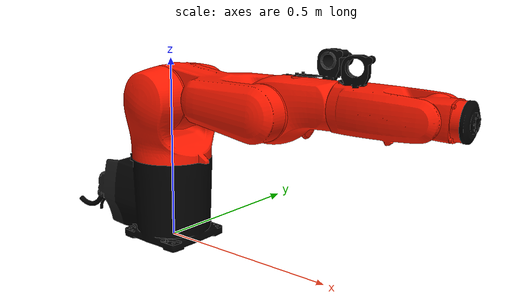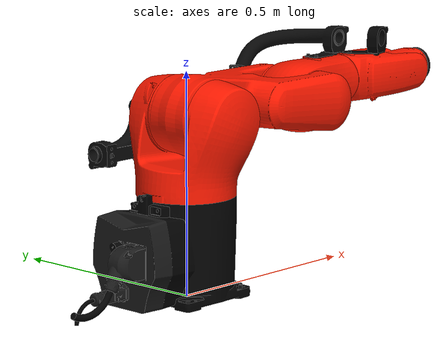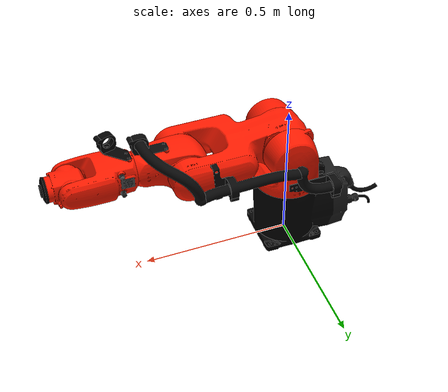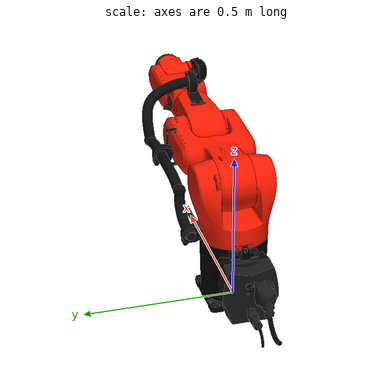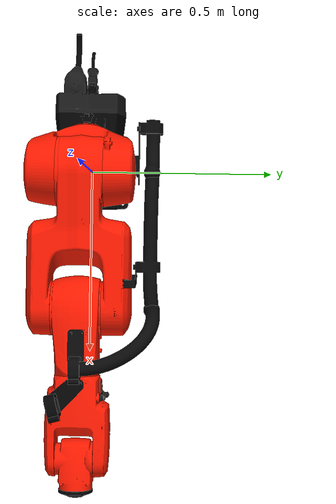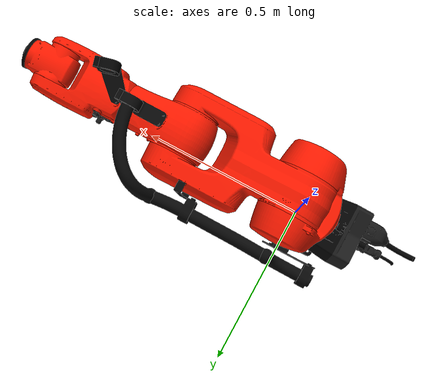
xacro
<?xml version="1.0" encoding="UTF-8"?>
<robot xmlns:xacro="http://ros.org/wiki/xacro" name="kr6_r700_2">
  <!-- Import macro files  -->
  <xacro:include filename="$(find kuka_agilus_support)/urdf/kr6_r700_2_macro.xacro"/>
  <xacro:include filename="$(find kuka_agilus_support)/urdf/kr_agilus_ros2_control_macro.xacro"/>
  <!-- Read additional arguments  -->
  <xacro:arg name="driver_version" default="rsi_only"/>
  <xacro:arg name="mode" default="hardware"/>
  <xacro:arg name="gpio_config" default=""/>
  <xacro:arg name="roundtrip_time" default="0"/>
  <xacro:arg name="client_ip" default="0.0.0.0"/>
  <xacro:arg name="client_port" default="59152"/>
  <xacro:arg name="mxa_client_port" default="1337"/>
  <xacro:arg name="controller_ip" default="0.0.0.0"/>
  <xacro:arg name="verify_robot_model" default="true"/>
  <xacro:arg name="prefix" default=""/>
  <xacro:arg name="x" default="0"/>
  <xacro:arg name="y" default="0"/>
  <xacro:arg name="z" default="0"/>
  <xacro:arg name="roll" default="0"/>
  <xacro:arg name="pitch" default="0"/>
  <xacro:arg name="yaw" default="0"/>
  <xacro:arg name="rsi_xml_config_file" default=""/>
  <xacro:kuka_agilus_ros2_control name="$(arg prefix)kr6_r700_2" driver_version="$(arg driver_version)" client_ip="$(arg client_ip)" client_port="$(arg client_port)" mxa_client_port="$(arg mxa_client_port)" controller_ip="$(arg controller_ip)" prefix="$(arg prefix)" mode="$(arg mode)" gpio_config="$(arg gpio_config)" roundtrip_time="$(arg roundtrip_time)" verify_robot_model="$(arg verify_robot_model)" rsi_xml_config_file="$(arg rsi_xml_config_file)">
    <ext_axes_ros2_control_joints/>
  </xacro:kuka_agilus_ros2_control>
  <!-- world link -->
  <link name="world"/>
  <!-- robot links, joints -->
  <xacro:kuka_kr6_r700_2_robot prefix="$(arg prefix)" package_name="kuka_agilus_support"/>
  <!-- default world - base_link joint -->
  <joint name="$(arg prefix)world-base_link" type="fixed">
    <parent link="world"/>
    <child link="$(arg prefix)base_link"/>
    <origin xyz="$(arg x) $(arg y) $(arg z)" rpy="$(arg roll) $(arg pitch) $(arg yaw)"/>
  </joint>
</robot>

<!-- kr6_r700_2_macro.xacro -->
<robot xmlns:xacro="http://www.ros.org/wiki/xacro" name="kr6_r700_2">
  <xacro:macro name="kuka_kr6_r700_2_robot" params="prefix package_name">
    <link name="${prefix}base"/>
    <link name="${prefix}base_link">
      <collision>
        <geometry>
          <mesh filename="package://${package_name}/meshes/kr6_r700_2/collision/base_link.stl"/>
        </geometry>
        <origin rpy="0.0 -0.0 0.0" xyz="0.0 0.0 0.0"/>
      </collision>
      <inertial>
        <inertia ixx="0.16209200415615" ixy="0.0" ixz="0.0" iyy="0.10881181598555635" iyz="0.0" izz="0.18461591505869543"/>
        <mass value="1.6916E1"/>
        <origin rpy="1.6165592773339865 -1.221289277333065 3.10031147437779" xyz="-0.03713348309292976 2.6602033577676952E-5 0.10863850792149446"/>
      </inertial>
      <visual>
        <geometry>
          <mesh filename="package://${package_name}/meshes/kr6_r700_2/visual/base_link.dae"/>
        </geometry>
        <origin rpy="0.0 -0.0 0.0" xyz="0.0 0.0 0.0"/>
      </visual>
    </link>
    <link name="${prefix}flange"/>
    <link name="${prefix}link_1">
      <collision>
        <geometry>
          <mesh filename="package://${package_name}/meshes/kr6_r700_2/collision/link_1.stl"/>
        </geometry>
        <origin rpy="-3.141592653589793 0.0 -0.0" xyz="0.0 -2.547265342226495e-17 0.20800000000000002"/>
      </collision>
      <inertial>
        <inertia ixx="0.07406183855390856" ixy="0.0" ixz="0.0" iyy="0.0890478351825312" iyz="0.0" izz="0.11039570662759428"/>
        <mass value="8.416E0"/>
        <origin rpy="1.304519343134156 -0.9428616016893944 -1.4226510948637578" xyz="0.00641040874524715 -0.016268053707224336 -0.1065889377376426"/>
      </inertial>
      <visual>
        <geometry>
          <mesh filename="package://${package_name}/meshes/kr6_r700_2/visual/link_1.dae"/>
        </geometry>
        <origin rpy="-3.141592653589793 0.0 -0.0" xyz="0.0 -2.547265342226495e-17 0.20800000000000002"/>
      </visual>
    </link>
    <link name="${prefix}link_2">
      <collision>
        <geometry>
          <mesh filename="package://${package_name}/meshes/kr6_r700_2/collision/link_2.stl"/>
        </geometry>
        <origin rpy="1.5707963267948968 -0.0 1.5707963267948966" xyz="-0.4 -0.024999999999999977 -0.09069999999999996"/>
      </collision>
      <inertial>
        <inertia ixx="0.2791393962851823" ixy="0.0" ixz="0.0" iyy="0.0812068241212874" iyz="0.0" izz="0.3188594096256082"/>
        <mass value="1.55659E1"/>
        <origin rpy="-1.3903732489969955 -1.5149954424356888 -0.19980852830399726" xyz="0.0968897140544395 -0.004085391785890956 -0.07157586711979391"/>
      </inertial>
      <visual>
        <geometry>
          <mesh filename="package://${package_name}/meshes/kr6_r700_2/visual/link_2.dae"/>
        </geometry>
        <origin rpy="1.5707963267948968 -0.0 1.5707963267948966" xyz="-0.4 -0.024999999999999977 -0.09069999999999996"/>
      </visual>
    </link>
    <link name="${prefix}link_3">
      <collision>
        <geometry>
          <mesh filename="package://${package_name}/meshes/kr6_r700_2/collision/link_3.stl"/>
        </geometry>
        <origin rpy="1.5707963267948968 -0.0 -0.0" xyz="-0.025000000000000022 0.7350000000000001 -0.08649999999999995"/>
      </collision>
      <inertial>
        <inertia ixx="0.016743444555446366" ixy="0.0" ixz="0.0" iyy="0.02548253701645681" iyz="0.0" izz="0.02822390996140249"/>
        <mass value="5.303E0"/>
        <origin rpy="2.358120324062734 -0.2189419917733543 -3.0042851780780877" xyz="0.022228738449934005 -0.011136149349424855 -0.06927623986422782"/>
      </inertial>
      <visual>
        <geometry>
          <mesh filename="package://${package_name}/meshes/kr6_r700_2/visual/link_3.dae"/>
        </geometry>
        <origin rpy="1.5707963267948968 -0.0 -0.0" xyz="-0.025000000000000022 0.7350000000000001 -0.08649999999999995"/>
      </visual>
    </link>
    <link name="${prefix}link_4">
      <collision>
        <geometry>
          <mesh filename="package://${package_name}/meshes/kr6_r700_2/collision/link_4.stl"/>
        </geometry>
        <origin rpy="1.8369701987210297e-16 1.5707963267948966 0.0" xyz="-0.76 3.4089087741312404e-17 0.16599999999999998"/>
      </collision>
      <inertial>
        <inertia ixx="0.01053127278723183" ixy="0.0" ixz="0.0" iyy="0.03425565311920861" iyz="0.0" izz="0.03735903294944075"/>
        <mass value="4.6129999999999995E0"/>
        <origin rpy="-2.0540104905408416 -1.5266176566842766 2.01813464445371" xyz="1.0969000650336042E-4 0.010267591588987646 -0.09163862995881207"/>
      </inertial>
      <visual>
        <geometry>
          <mesh filename="package://${package_name}/meshes/kr6_r700_2/visual/link_4.dae"/>
        </geometry>
        <origin rpy="1.8369701987210297e-16 1.5707963267948966 0.0" xyz="-0.76 3.4089087741312404e-17 0.16599999999999998"/>
      </visual>
    </link>
    <link name="${prefix}link_5">
      <collision>
        <geometry>
          <mesh filename="package://${package_name}/meshes/kr6_r700_2/collision/link_5.stl"/>
        </geometry>
        <origin rpy="1.5707963267948968 -3.749399456654644e-33 -6.123233995736766e-17" xyz="-0.38999999999999996 0.76 -0.05049999999999998"/>
      </collision>
      <inertial>
        <inertia ixx="0.0017317756133102902" ixy="0.0" ixz="0.0" iyy="0.0022195008054406813" iyz="0.0" izz="0.002467090055442976"/>
        <mass value="1.6128E0"/>
        <origin rpy="1.567898714902773 -0.8611716764868312 -3.100280255900494" xyz="0.009320696924603175 7.83482142857143E-4 -0.026462549603174602"/>
      </inertial>
      <visual>
        <geometry>
          <mesh filename="package://${package_name}/meshes/kr6_r700_2/visual/link_5.dae"/>
        </geometry>
        <origin rpy="1.5707963267948968 -3.749399456654644e-33 -6.123233995736766e-17" xyz="-0.38999999999999996 0.76 -0.05049999999999998"/>
      </visual>
    </link>
    <link name="${prefix}link_6">
      <collision>
        <geometry>
          <mesh filename="package://${package_name}/meshes/kr6_r700_2/collision/link_6.stl"/>
        </geometry>
        <origin rpy="1.2246467991473532e-16 1.5707963267948966 0.0" xyz="-0.76 -1.6051535876301016e-17 0.4514999999999999"/>
      </collision>
      <inertial>
        <inertia ixx="1.83698267603013E-4" ixy="0.0" ixz="0.0" iyy="1.8213621766783165E-4" iyz="0.0" izz="2.9589000000000004E-4"/>
        <mass value="7.34E-1"/>
        <origin rpy="0.0 -0.0 1.2234271886965395" xyz="0.0 0.0 -0.011764604904632152"/>
      </inertial>
      <visual>
        <geometry>
          <mesh filename="package://${package_name}/meshes/kr6_r700_2/visual/link_6.dae"/>
        </geometry>
        <origin rpy="1.2246467991473532e-16 1.5707963267948966 0.0" xyz="-0.76 -1.6051535876301016e-17 0.4514999999999999"/>
      </visual>
    </link>
    <link name="${prefix}tool0"/>
    <joint name="${prefix}base_link-base" type="fixed">
      <child link="${prefix}base"/>
      <parent link="${prefix}base_link"/>
    </joint>
    <joint name="${prefix}joint_1" type="revolute">
      <axis xyz="0.0 0.0 1.0"/>
      <child link="${prefix}link_1"/>
      <limit effort="1.86E2" lower="-2.967059725E0" upper="2.967059725E0" velocity="6.2831853071795862E0"/>
      <origin rpy="3.141592653589793 -0.0 0.0" xyz="0.0 0.0 0.20800000000000002"/>
      <parent link="${prefix}base_link"/>
    </joint>
    <joint name="${prefix}joint_2" type="revolute">
      <axis xyz="0.0 0.0 1.0"/>
      <child link="${prefix}link_2"/>
      <limit effort="1.6893729997505432E2" lower="-2.5" upper="0.1" velocity="5.2359877559829888E0"/>
      <origin rpy="1.5707963267948966 -0.0 0.0" xyz="0.025 -0.0907 -0.192"/>
      <parent link="${prefix}link_1"/>
    </joint>
    <joint name="${prefix}joint_3" type="revolute">
      <axis xyz="0.0 0.0 1.0"/>
      <child link="${prefix}link_3"/>
      <limit effort="8.1493186258254326E1" lower="-0.5" upper="2.5" velocity="6.2831853071795862E0"/>
      <origin rpy="0.0 -0.0 0.0" xyz="0.335 0.0 -0.004200000000000001"/>
      <parent link="${prefix}link_2"/>
    </joint>
    <joint name="${prefix}joint_4" type="revolute">
      <axis xyz="0.0 0.0 1.0"/>
      <child link="${prefix}link_4"/>
      <limit effort="4.8879867848304357E1" lower="-3.2288591125E0" upper="3.2288591125E0" velocity="7.8539816339744828E0"/>
      <origin rpy="1.5707963267948966 -0.0 -1.5707963267948966" xyz="0.14100000000000001 -0.025 -0.08650000000000001"/>
      <parent link="${prefix}link_3"/>
    </joint>
    <joint name="${prefix}joint_5" type="revolute">
      <axis xyz="0.0 0.0 1.0"/>
      <child link="${prefix}link_5"/>
      <limit effort="4.0135638235238289E1" lower="-2.0943951E0" upper="2.0943951E0" velocity="7.8539816339744828E0"/>
      <origin rpy="0.0 1.5707963267948966 1.5707963267948966" xyz="0.0 0.0505 -0.224"/>
      <parent link="${prefix}link_4"/>
    </joint>
    <joint name="${prefix}joint_6" type="revolute">
      <axis xyz="0.0 0.0 1.0"/>
      <child link="${prefix}link_6"/>
      <limit effort="2.7358196129032258E1" lower="-6.108652375E0" upper="6.108652375E0" velocity="9.42477796076938E0"/>
      <origin rpy="1.5707963267948966 -0.0 -1.5707963267948966" xyz="0.0615 0.0 -0.0505"/>
      <parent link="${prefix}link_5"/>
    </joint>
    <joint name="${prefix}link6-flange" type="fixed">
      <child link="${prefix}flange"/>
      <origin rpy="0.0 1.5707963267948966 0.0" xyz="0.0 0.0 -0.0285"/>
      <parent link="${prefix}link_6"/>
    </joint>
    <joint name="${prefix}link6-tool0" type="fixed">
      <child link="${prefix}tool0"/>
      <origin rpy="3.141592653589793 1.2246467991473532E-16 3.141592653589793" xyz="0.0 0.0 -0.0285"/>
      <parent link="${prefix}link_6"/>
    </joint>
  </xacro:macro>
</robot>
